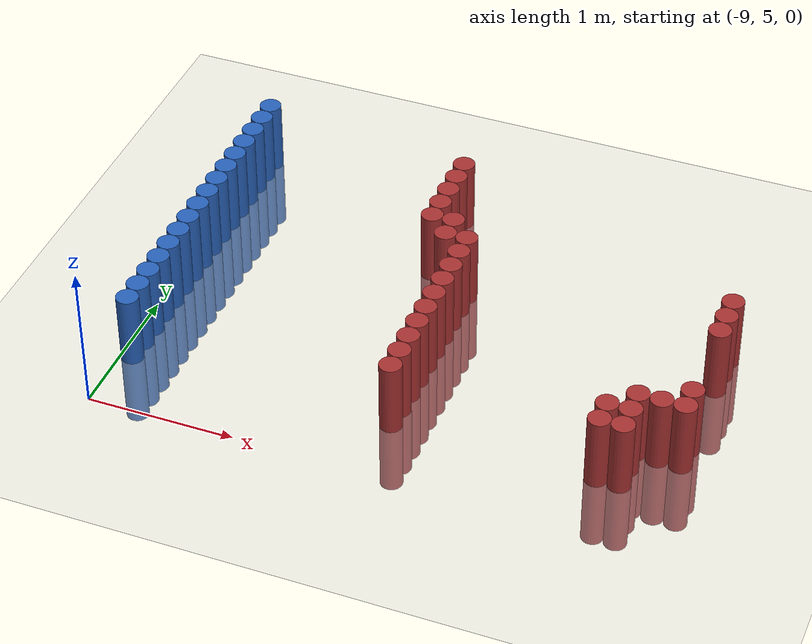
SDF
<sdf version="1.6">
 <world name="default">
  <model name="ground_plane">
   <static>1</static>
   <link name="link">
    <collision name="collision">
     <geometry><plane><normal>0 0 1</normal><size>100 100</size></plane></geometry>
     <surface><friction><ode><mu>100</mu><mu2>50</mu2></ode></friction></surface>
    </collision>
    <visual name="visual">
     <cast_shadows>0</cast_shadows>
     <geometry><plane><normal>0 0 1</normal><size>100 100</size></plane></geometry>
     <material>
      <script><uri>file://media/materials/scripts/gazebo.material</uri><name>Gazebo/Grey</name></script>
     </material>
    </visual>
   </link>
  </model>
  <model name="unit_cylinder_127">
   <static>1</static>
   <pose>-8.925000 5.475000 0.000000 0.000000 0.000000 0.000000</pose>
   <link name="link">
    <inertial>
     <mass>1</mass>
     <inertia><ixx>0.145833</ixx><ixy>0</ixy><ixz>0</ixz><iyy>0.145833</iyy><iyz>0</iyz><izz>0.125</izz></inertia>
    </inertial>
    <collision name="collision">
     <geometry><cylinder><radius>0.075000</radius><length>1</length></cylinder></geometry>
    </collision>
    <visual name="visual">
     <geometry><cylinder><radius>0.075000</radius><length>1</length></cylinder></geometry>
     <material>
      <ambient>0.152000 0.379000 0.720000 1</ambient>
      <diffuse>0.152000 0.379000 0.720000 1</diffuse>
     </material>
     <material>
      <script><name>Gazebo/Grey</name><uri>file://media/materials/scripts/gazebo.material</uri></script>
     </material>
    </visual>
   </link>
  </model>
  <model name="unit_cylinder_128">
   <static>1</static>
   <pose>-8.925000 5.625000 0.000000 0.000000 0.000000 0.000000</pose>
   <link name="link">
    <inertial>
     <mass>1</mass>
     <inertia><ixx>0.145833</ixx><ixy>0</ixy><ixz>0</ixz><iyy>0.145833</iyy><iyz>0</iyz><izz>0.125</izz></inertia>
    </inertial>
    <collision name="collision">
     <geometry><cylinder><radius>0.075000</radius><length>1</length></cylinder></geometry>
    </collision>
    <visual name="visual">
     <geometry><cylinder><radius>0.075000</radius><length>1</length></cylinder></geometry>
     <material>
      <ambient>0.152000 0.379000 0.720000 1</ambient>
      <diffuse>0.152000 0.379000 0.720000 1</diffuse>
     </material>
     <material>
      <script><name>Gazebo/Grey</name><uri>file://media/materials/scripts/gazebo.material</uri></script>
     </material>
    </visual>
   </link>
  </model>
  <model name="unit_cylinder_129">
   <static>1</static>
   <pose>-8.925000 5.775000 0.000000 0.000000 0.000000 0.000000</pose>
   <link name="link">
    <inertial>
     <mass>1</mass>
     <inertia><ixx>0.145833</ixx><ixy>0</ixy><ixz>0</ixz><iyy>0.145833</iyy><iyz>0</iyz><izz>0.125</izz></inertia>
    </inertial>
    <collision name="collision">
     <geometry><cylinder><radius>0.075000</radius><length>1</length></cylinder></geometry>
    </collision>
    <visual name="visual">
     <geometry><cylinder><radius>0.075000</radius><length>1</length></cylinder></geometry>
     <material>
      <ambient>0.152000 0.379000 0.720000 1</ambient>
      <diffuse>0.152000 0.379000 0.720000 1</diffuse>
     </material>
     <material>
      <script><name>Gazebo/Grey</name><uri>file://media/materials/scripts/gazebo.material</uri></script>
     </material>
    </visual>
   </link>
  </model>
  <model name="unit_cylinder_130">
   <static>1</static>
   <pose>-8.925000 5.925000 0.000000 0.000000 0.000000 0.000000</pose>
   <link name="link">
    <inertial>
     <mass>1</mass>
     <inertia><ixx>0.145833</ixx><ixy>0</ixy><ixz>0</ixz><iyy>0.145833</iyy><iyz>0</iyz><izz>0.125</izz></inertia>
    </inertial>
    <collision name="collision">
     <geometry><cylinder><radius>0.075000</radius><length>1</length></cylinder></geometry>
    </collision>
    <visual name="visual">
     <geometry><cylinder><radius>0.075000</radius><length>1</length></cylinder></geometry>
     <material>
      <ambient>0.152000 0.379000 0.720000 1</ambient>
      <diffuse>0.152000 0.379000 0.720000 1</diffuse>
     </material>
     <material>
      <script><name>Gazebo/Grey</name><uri>file://media/materials/scripts/gazebo.material</uri></script>
     </material>
    </visual>
   </link>
  </model>
  <model name="unit_cylinder_131">
   <static>1</static>
   <pose>-8.925000 6.075000 0.000000 0.000000 0.000000 0.000000</pose>
   <link name="link">
    <inertial>
     <mass>1</mass>
     <inertia><ixx>0.145833</ixx><ixy>0</ixy><ixz>0</ixz><iyy>0.145833</iyy><iyz>0</iyz><izz>0.125</izz></inertia>
    </inertial>
    <collision name="collision">
     <geometry><cylinder><radius>0.075000</radius><length>1</length></cylinder></geometry>
    </collision>
    <visual name="visual">
     <geometry><cylinder><radius>0.075000</radius><length>1</length></cylinder></geometry>
     <material>
      <ambient>0.152000 0.379000 0.720000 1</ambient>
      <diffuse>0.152000 0.379000 0.720000 1</diffuse>
     </material>
     <material>
      <script><name>Gazebo/Grey</name><uri>file://media/materials/scripts/gazebo.material</uri></script>
     </material>
    </visual>
   </link>
  </model>
  <model name="unit_cylinder_132">
   <static>1</static>
   <pose>-8.925000 6.225000 0.000000 0.000000 0.000000 0.000000</pose>
   <link name="link">
    <inertial>
     <mass>1</mass>
     <inertia><ixx>0.145833</ixx><ixy>0</ixy><ixz>0</ixz><iyy>0.145833</iyy><iyz>0</iyz><izz>0.125</izz></inertia>
    </inertial>
    <collision name="collision">
     <geometry><cylinder><radius>0.075000</radius><length>1</length></cylinder></geometry>
    </collision>
    <visual name="visual">
     <geometry><cylinder><radius>0.075000</radius><length>1</length></cylinder></geometry>
     <material>
      <ambient>0.152000 0.379000 0.720000 1</ambient>
      <diffuse>0.152000 0.379000 0.720000 1</diffuse>
     </material>
     <material>
      <script><name>Gazebo/Grey</name><uri>file://media/materials/scripts/gazebo.material</uri></script>
     </material>
    </visual>
   </link>
  </model>
  <model name="unit_cylinder_133">
   <static>1</static>
   <pose>-8.925000 6.375000 0.000000 0.000000 0.000000 0.000000</pose>
   <link name="link">
    <inertial>
     <mass>1</mass>
     <inertia><ixx>0.145833</ixx><ixy>0</ixy><ixz>0</ixz><iyy>0.145833</iyy><iyz>0</iyz><izz>0.125</izz></inertia>
    </inertial>
    <collision name="collision">
     <geometry><cylinder><radius>0.075000</radius><length>1</length></cylinder></geometry>
    </collision>
    <visual name="visual">
     <geometry><cylinder><radius>0.075000</radius><length>1</length></cylinder></geometry>
     <material>
      <ambient>0.152000 0.379000 0.720000 1</ambient>
      <diffuse>0.152000 0.379000 0.720000 1</diffuse>
     </material>
     <material>
      <script><name>Gazebo/Grey</name><uri>file://media/materials/scripts/gazebo.material</uri></script>
     </material>
    </visual>
   </link>
  </model>
  <model name="unit_cylinder_134">
   <static>1</static>
   <pose>-8.925000 6.525000 0.000000 0.000000 0.000000 0.000000</pose>
   <link name="link">
    <inertial>
     <mass>1</mass>
     <inertia><ixx>0.145833</ixx><ixy>0</ixy><ixz>0</ixz><iyy>0.145833</iyy><iyz>0</iyz><izz>0.125</izz></inertia>
    </inertial>
    <collision name="collision">
     <geometry><cylinder><radius>0.075000</radius><length>1</length></cylinder></geometry>
    </collision>
    <visual name="visual">
     <geometry><cylinder><radius>0.075000</radius><length>1</length></cylinder></geometry>
     <material>
      <ambient>0.152000 0.379000 0.720000 1</ambient>
      <diffuse>0.152000 0.379000 0.720000 1</diffuse>
     </material>
     <material>
      <script><name>Gazebo/Grey</name><uri>file://media/materials/scripts/gazebo.material</uri></script>
     </material>
    </visual>
   </link>
  </model>
  <model name="unit_cylinder_135">
   <static>1</static>
   <pose>-8.925000 6.675000 0.000000 0.000000 0.000000 0.000000</pose>
   <link name="link">
    <inertial>
     <mass>1</mass>
     <inertia><ixx>0.145833</ixx><ixy>0</ixy><ixz>0</ixz><iyy>0.145833</iyy><iyz>0</iyz><izz>0.125</izz></inertia>
    </inertial>
    <collision name="collision">
     <geometry><cylinder><radius>0.075000</radius><length>1</length></cylinder></geometry>
    </collision>
    <visual name="visual">
     <geometry><cylinder><radius>0.075000</radius><length>1</length></cylinder></geometry>
     <material>
      <ambient>0.152000 0.379000 0.720000 1</ambient>
      <diffuse>0.152000 0.379000 0.720000 1</diffuse>
     </material>
     <material>
      <script><name>Gazebo/Grey</name><uri>file://media/materials/scripts/gazebo.material</uri></script>
     </material>
    </visual>
   </link>
  </model>
  <model name="unit_cylinder_136">
   <static>1</static>
   <pose>-8.925000 6.825000 0.000000 0.000000 0.000000 0.000000</pose>
   <link name="link">
    <inertial>
     <mass>1</mass>
     <inertia><ixx>0.145833</ixx><ixy>0</ixy><ixz>0</ixz><iyy>0.145833</iyy><iyz>0</iyz><izz>0.125</izz></inertia>
    </inertial>
    <collision name="collision">
     <geometry><cylinder><radius>0.075000</radius><length>1</length></cylinder></geometry>
    </collision>
    <visual name="visual">
     <geometry><cylinder><radius>0.075000</radius><length>1</length></cylinder></geometry>
     <material>
      <ambient>0.152000 0.379000 0.720000 1</ambient>
      <diffuse>0.152000 0.379000 0.720000 1</diffuse>
     </material>
     <material>
      <script><name>Gazebo/Grey</name><uri>file://media/materials/scripts/gazebo.material</uri></script>
     </material>
    </visual>
   </link>
  </model>
  <model name="unit_cylinder_137">
   <static>1</static>
   <pose>-8.925000 6.975000 0.000000 0.000000 0.000000 0.000000</pose>
   <link name="link">
    <inertial>
     <mass>1</mass>
     <inertia><ixx>0.145833</ixx><ixy>0</ixy><ixz>0</ixz><iyy>0.145833</iyy><iyz>0</iyz><izz>0.125</izz></inertia>
    </inertial>
    <collision name="collision">
     <geometry><cylinder><radius>0.075000</radius><length>1</length></cylinder></geometry>
    </collision>
    <visual name="visual">
     <geometry><cylinder><radius>0.075000</radius><length>1</length></cylinder></geometry>
     <material>
      <ambient>0.152000 0.379000 0.720000 1</ambient>
      <diffuse>0.152000 0.379000 0.720000 1</diffuse>
     </material>
     <material>
      <script><name>Gazebo/Grey</name><uri>file://media/materials/scripts/gazebo.material</uri></script>
     </material>
    </visual>
   </link>
  </model>
  <model name="unit_cylinder_138">
   <static>1</static>
   <pose>-8.925000 7.125000 0.000000 0.000000 0.000000 0.000000</pose>
   <link name="link">
    <inertial>
     <mass>1</mass>
     <inertia><ixx>0.145833</ixx><ixy>0</ixy><ixz>0</ixz><iyy>0.145833</iyy><iyz>0</iyz><izz>0.125</izz></inertia>
    </inertial>
    <collision name="collision">
     <geometry><cylinder><radius>0.075000</radius><length>1</length></cylinder></geometry>
    </collision>
    <visual name="visual">
     <geometry><cylinder><radius>0.075000</radius><length>1</length></cylinder></geometry>
     <material>
      <ambient>0.152000 0.379000 0.720000 1</ambient>
      <diffuse>0.152000 0.379000 0.720000 1</diffuse>
     </material>
     <material>
      <script><name>Gazebo/Grey</name><uri>file://media/materials/scripts/gazebo.material</uri></script>
     </material>
    </visual>
   </link>
  </model>
  <model name="unit_cylinder_139">
   <static>1</static>
   <pose>-8.925000 7.275000 0.000000 0.000000 0.000000 0.000000</pose>
   <link name="link">
    <inertial>
     <mass>1</mass>
     <inertia><ixx>0.145833</ixx><ixy>0</ixy><ixz>0</ixz><iyy>0.145833</iyy><iyz>0</iyz><izz>0.125</izz></inertia>
    </inertial>
    <collision name="collision">
     <geometry><cylinder><radius>0.075000</radius><length>1</length></cylinder></geometry>
    </collision>
    <visual name="visual">
     <geometry><cylinder><radius>0.075000</radius><length>1</length></cylinder></geometry>
     <material>
      <ambient>0.152000 0.379000 0.720000 1</ambient>
      <diffuse>0.152000 0.379000 0.720000 1</diffuse>
     </material>
     <material>
      <script><name>Gazebo/Grey</name><uri>file://media/materials/scripts/gazebo.material</uri></script>
     </material>
    </visual>
   </link>
  </model>
  <model name="unit_cylinder_140">
   <static>1</static>
   <pose>-8.925000 7.425000 0.000000 0.000000 0.000000 0.000000</pose>
   <link name="link">
    <inertial>
     <mass>1</mass>
     <inertia><ixx>0.145833</ixx><ixy>0</ixy><ixz>0</ixz><iyy>0.145833</iyy><iyz>0</iyz><izz>0.125</izz></inertia>
    </inertial>
    <collision name="collision">
     <geometry><cylinder><radius>0.075000</radius><length>1</length></cylinder></geometry>
    </collision>
    <visual name="visual">
     <geometry><cylinder><radius>0.075000</radius><length>1</length></cylinder></geometry>
     <material>
      <ambient>0.152000 0.379000 0.720000 1</ambient>
      <diffuse>0.152000 0.379000 0.720000 1</diffuse>
     </material>
     <material>
      <script><name>Gazebo/Grey</name><uri>file://media/materials/scripts/gazebo.material</uri></script>
     </material>
    </visual>
   </link>
  </model>
  <model name="unit_cylinder_141">
   <static>1</static>
   <pose>-8.925000 7.575000 0.000000 0.000000 0.000000 0.000000</pose>
   <link name="link">
    <inertial>
     <mass>1</mass>
     <inertia><ixx>0.145833</ixx><ixy>0</ixy><ixz>0</ixz><iyy>0.145833</iyy><iyz>0</iyz><izz>0.125</izz></inertia>
    </inertial>
    <collision name="collision">
     <geometry><cylinder><radius>0.075000</radius><length>1</length></cylinder></geometry>
    </collision>
    <visual name="visual">
     <geometry><cylinder><radius>0.075000</radius><length>1</length></cylinder></geometry>
     <material>
      <ambient>0.152000 0.379000 0.720000 1</ambient>
      <diffuse>0.152000 0.379000 0.720000 1</diffuse>
     </material>
     <material>
      <script><name>Gazebo/Grey</name><uri>file://media/materials/scripts/gazebo.material</uri></script>
     </material>
    </visual>
   </link>
  </model>
  <model name="unit_cylinder_142">
   <static>1</static>
   <pose>-8.925000 7.725000 0.000000 0.000000 0.000000 0.000000</pose>
   <link name="link">
    <inertial>
     <mass>1</mass>
     <inertia><ixx>0.145833</ixx><ixy>0</ixy><ixz>0</ixz><iyy>0.145833</iyy><iyz>0</iyz><izz>0.125</izz></inertia>
    </inertial>
    <collision name="collision">
     <geometry><cylinder><radius>0.075000</radius><length>1</length></cylinder></geometry>
    </collision>
    <visual name="visual">
     <geometry><cylinder><radius>0.075000</radius><length>1</length></cylinder></geometry>
     <material>
      <ambient>0.152000 0.379000 0.720000 1</ambient>
      <diffuse>0.152000 0.379000 0.720000 1</diffuse>
     </material>
     <material>
      <script><name>Gazebo/Grey</name><uri>file://media/materials/scripts/gazebo.material</uri></script>
     </material>
    </visual>
   </link>
  </model>
  <model name="unit_cylinder_174">
   <static>1</static>
   <pose>-7.425000 6.975000 0.000000 0.000000 0.000000 0.000000</pose>
   <link name="link">
    <inertial>
     <mass>1</mass>
     <inertia><ixx>0.145833</ixx><ixy>0</ixy><ixz>0</ixz><iyy>0.145833</iyy><iyz>0</iyz><izz>0.125</izz></inertia>
    </inertial>
    <collision name="collision">
     <geometry><cylinder><radius>0.075000</radius><length>1</length></cylinder></geometry>
    </collision>
    <visual name="visual">
     <geometry><cylinder><radius>0.075000</radius><length>1</length></cylinder></geometry>
     <material>
      <ambient>0.648000 0.192000 0.192000 1</ambient>
      <diffuse>0.648000 0.192000 0.192000 1</diffuse>
     </material>
     <material>
      <script><name>Gazebo/Grey</name><uri>file://media/materials/scripts/gazebo.material</uri></script>
     </material>
    </visual>
   </link>
  </model>
  <model name="unit_cylinder_175">
   <static>1</static>
   <pose>-7.425000 7.125000 0.000000 0.000000 0.000000 0.000000</pose>
   <link name="link">
    <inertial>
     <mass>1</mass>
     <inertia><ixx>0.145833</ixx><ixy>0</ixy><ixz>0</ixz><iyy>0.145833</iyy><iyz>0</iyz><izz>0.125</izz></inertia>
    </inertial>
    <collision name="collision">
     <geometry><cylinder><radius>0.075000</radius><length>1</length></cylinder></geometry>
    </collision>
    <visual name="visual">
     <geometry><cylinder><radius>0.075000</radius><length>1</length></cylinder></geometry>
     <material>
      <ambient>0.648000 0.192000 0.192000 1</ambient>
      <diffuse>0.648000 0.192000 0.192000 1</diffuse>
     </material>
     <material>
      <script><name>Gazebo/Grey</name><uri>file://media/materials/scripts/gazebo.material</uri></script>
     </material>
    </visual>
   </link>
  </model>
  <model name="unit_cylinder_176">
   <static>1</static>
   <pose>-7.425000 7.275000 0.000000 0.000000 0.000000 0.000000</pose>
   <link name="link">
    <inertial>
     <mass>1</mass>
     <inertia><ixx>0.145833</ixx><ixy>0</ixy><ixz>0</ixz><iyy>0.145833</iyy><iyz>0</iyz><izz>0.125</izz></inertia>
    </inertial>
    <collision name="collision">
     <geometry><cylinder><radius>0.075000</radius><length>1</length></cylinder></geometry>
    </collision>
    <visual name="visual">
     <geometry><cylinder><radius>0.075000</radius><length>1</length></cylinder></geometry>
     <material>
      <ambient>0.648000 0.192000 0.192000 1</ambient>
      <diffuse>0.648000 0.192000 0.192000 1</diffuse>
     </material>
     <material>
      <script><name>Gazebo/Grey</name><uri>file://media/materials/scripts/gazebo.material</uri></script>
     </material>
    </visual>
   </link>
  </model>
  <model name="unit_cylinder_177">
   <static>1</static>
   <pose>-7.425000 7.425000 0.000000 0.000000 0.000000 0.000000</pose>
   <link name="link">
    <inertial>
     <mass>1</mass>
     <inertia><ixx>0.145833</ixx><ixy>0</ixy><ixz>0</ixz><iyy>0.145833</iyy><iyz>0</iyz><izz>0.125</izz></inertia>
    </inertial>
    <collision name="collision">
     <geometry><cylinder><radius>0.075000</radius><length>1</length></cylinder></geometry>
    </collision>
    <visual name="visual">
     <geometry><cylinder><radius>0.075000</radius><length>1</length></cylinder></geometry>
     <material>
      <ambient>0.648000 0.192000 0.192000 1</ambient>
      <diffuse>0.648000 0.192000 0.192000 1</diffuse>
     </material>
     <material>
      <script><name>Gazebo/Grey</name><uri>file://media/materials/scripts/gazebo.material</uri></script>
     </material>
    </visual>
   </link>
  </model>
  <model name="unit_cylinder_178">
   <static>1</static>
   <pose>-7.425000 7.575000 0.000000 0.000000 0.000000 0.000000</pose>
   <link name="link">
    <inertial>
     <mass>1</mass>
     <inertia><ixx>0.145833</ixx><ixy>0</ixy><ixz>0</ixz><iyy>0.145833</iyy><iyz>0</iyz><izz>0.125</izz></inertia>
    </inertial>
    <collision name="collision">
     <geometry><cylinder><radius>0.075000</radius><length>1</length></cylinder></geometry>
    </collision>
    <visual name="visual">
     <geometry><cylinder><radius>0.075000</radius><length>1</length></cylinder></geometry>
     <material>
      <ambient>0.648000 0.192000 0.192000 1</ambient>
      <diffuse>0.648000 0.192000 0.192000 1</diffuse>
     </material>
     <material>
      <script><name>Gazebo/Grey</name><uri>file://media/materials/scripts/gazebo.material</uri></script>
     </material>
    </visual>
   </link>
  </model>
  <model name="unit_cylinder_193">
   <static>1</static>
   <pose>-7.275000 6.825000 0.000000 0.000000 0.000000 0.000000</pose>
   <link name="link">
    <inertial>
     <mass>1</mass>
     <inertia><ixx>0.145833</ixx><ixy>0</ixy><ixz>0</ixz><iyy>0.145833</iyy><iyz>0</iyz><izz>0.125</izz></inertia>
    </inertial>
    <collision name="collision">
     <geometry><cylinder><radius>0.075000</radius><length>1</length></cylinder></geometry>
    </collision>
    <visual name="visual">
     <geometry><cylinder><radius>0.075000</radius><length>1</length></cylinder></geometry>
     <material>
      <ambient>0.648000 0.192000 0.192000 1</ambient>
      <diffuse>0.648000 0.192000 0.192000 1</diffuse>
     </material>
     <material>
      <script><name>Gazebo/Grey</name><uri>file://media/materials/scripts/gazebo.material</uri></script>
     </material>
    </visual>
   </link>
  </model>
  <model name="unit_cylinder_194">
   <static>1</static>
   <pose>-7.275000 6.975000 0.000000 0.000000 0.000000 0.000000</pose>
   <link name="link">
    <inertial>
     <mass>1</mass>
     <inertia><ixx>0.145833</ixx><ixy>0</ixy><ixz>0</ixz><iyy>0.145833</iyy><iyz>0</iyz><izz>0.125</izz></inertia>
    </inertial>
    <collision name="collision">
     <geometry><cylinder><radius>0.075000</radius><length>1</length></cylinder></geometry>
    </collision>
    <visual name="visual">
     <geometry><cylinder><radius>0.075000</radius><length>1</length></cylinder></geometry>
     <material>
      <ambient>0.648000 0.192000 0.192000 1</ambient>
      <diffuse>0.648000 0.192000 0.192000 1</diffuse>
     </material>
     <material>
      <script><name>Gazebo/Grey</name><uri>file://media/materials/scripts/gazebo.material</uri></script>
     </material>
    </visual>
   </link>
  </model>
  <model name="unit_cylinder_197">
   <static>1</static>
   <pose>-7.125000 5.475000 0.000000 0.000000 0.000000 0.000000</pose>
   <link name="link">
    <inertial>
     <mass>1</mass>
     <inertia><ixx>0.145833</ixx><ixy>0</ixy><ixz>0</ixz><iyy>0.145833</iyy><iyz>0</iyz><izz>0.125</izz></inertia>
    </inertial>
    <collision name="collision">
     <geometry><cylinder><radius>0.075000</radius><length>1</length></cylinder></geometry>
    </collision>
    <visual name="visual">
     <geometry><cylinder><radius>0.075000</radius><length>1</length></cylinder></geometry>
     <material>
      <ambient>0.648000 0.192000 0.192000 1</ambient>
      <diffuse>0.648000 0.192000 0.192000 1</diffuse>
     </material>
     <material>
      <script><name>Gazebo/Grey</name><uri>file://media/materials/scripts/gazebo.material</uri></script>
     </material>
    </visual>
   </link>
  </model>
  <model name="unit_cylinder_198">
   <static>1</static>
   <pose>-7.125000 5.625000 0.000000 0.000000 0.000000 0.000000</pose>
   <link name="link">
    <inertial>
     <mass>1</mass>
     <inertia><ixx>0.145833</ixx><ixy>0</ixy><ixz>0</ixz><iyy>0.145833</iyy><iyz>0</iyz><izz>0.125</izz></inertia>
    </inertial>
    <collision name="collision">
     <geometry><cylinder><radius>0.075000</radius><length>1</length></cylinder></geometry>
    </collision>
    <visual name="visual">
     <geometry><cylinder><radius>0.075000</radius><length>1</length></cylinder></geometry>
     <material>
      <ambient>0.648000 0.192000 0.192000 1</ambient>
      <diffuse>0.648000 0.192000 0.192000 1</diffuse>
     </material>
     <material>
      <script><name>Gazebo/Grey</name><uri>file://media/materials/scripts/gazebo.material</uri></script>
     </material>
    </visual>
   </link>
  </model>
  <model name="unit_cylinder_199">
   <static>1</static>
   <pose>-7.125000 5.775000 0.000000 0.000000 0.000000 0.000000</pose>
   <link name="link">
    <inertial>
     <mass>1</mass>
     <inertia><ixx>0.145833</ixx><ixy>0</ixy><ixz>0</ixz><iyy>0.145833</iyy><iyz>0</iyz><izz>0.125</izz></inertia>
    </inertial>
    <collision name="collision">
     <geometry><cylinder><radius>0.075000</radius><length>1</length></cylinder></geometry>
    </collision>
    <visual name="visual">
     <geometry><cylinder><radius>0.075000</radius><length>1</length></cylinder></geometry>
     <material>
      <ambient>0.648000 0.192000 0.192000 1</ambient>
      <diffuse>0.648000 0.192000 0.192000 1</diffuse>
     </material>
     <material>
      <script><name>Gazebo/Grey</name><uri>file://media/materials/scripts/gazebo.material</uri></script>
     </material>
    </visual>
   </link>
  </model>
  <model name="unit_cylinder_200">
   <static>1</static>
   <pose>-7.125000 5.925000 0.000000 0.000000 0.000000 0.000000</pose>
   <link name="link">
    <inertial>
     <mass>1</mass>
     <inertia><ixx>0.145833</ixx><ixy>0</ixy><ixz>0</ixz><iyy>0.145833</iyy><iyz>0</iyz><izz>0.125</izz></inertia>
    </inertial>
    <collision name="collision">
     <geometry><cylinder><radius>0.075000</radius><length>1</length></cylinder></geometry>
    </collision>
    <visual name="visual">
     <geometry><cylinder><radius>0.075000</radius><length>1</length></cylinder></geometry>
     <material>
      <ambient>0.648000 0.192000 0.192000 1</ambient>
      <diffuse>0.648000 0.192000 0.192000 1</diffuse>
     </material>
     <material>
      <script><name>Gazebo/Grey</name><uri>file://media/materials/scripts/gazebo.material</uri></script>
     </material>
    </visual>
   </link>
  </model>
  <model name="unit_cylinder_201">
   <static>1</static>
   <pose>-7.125000 6.075000 0.000000 0.000000 0.000000 0.000000</pose>
   <link name="link">
    <inertial>
     <mass>1</mass>
     <inertia><ixx>0.145833</ixx><ixy>0</ixy><ixz>0</ixz><iyy>0.145833</iyy><iyz>0</iyz><izz>0.125</izz></inertia>
    </inertial>
    <collision name="collision">
     <geometry><cylinder><radius>0.075000</radius><length>1</length></cylinder></geometry>
    </collision>
    <visual name="visual">
     <geometry><cylinder><radius>0.075000</radius><length>1</length></cylinder></geometry>
     <material>
      <ambient>0.648000 0.192000 0.192000 1</ambient>
      <diffuse>0.648000 0.192000 0.192000 1</diffuse>
     </material>
     <material>
      <script><name>Gazebo/Grey</name><uri>file://media/materials/scripts/gazebo.material</uri></script>
     </material>
    </visual>
   </link>
  </model>
  <model name="unit_cylinder_202">
   <static>1</static>
   <pose>-7.125000 6.225000 0.000000 0.000000 0.000000 0.000000</pose>
   <link name="link">
    <inertial>
     <mass>1</mass>
     <inertia><ixx>0.145833</ixx><ixy>0</ixy><ixz>0</ixz><iyy>0.145833</iyy><iyz>0</iyz><izz>0.125</izz></inertia>
    </inertial>
    <collision name="collision">
     <geometry><cylinder><radius>0.075000</radius><length>1</length></cylinder></geometry>
    </collision>
    <visual name="visual">
     <geometry><cylinder><radius>0.075000</radius><length>1</length></cylinder></geometry>
     <material>
      <ambient>0.648000 0.192000 0.192000 1</ambient>
      <diffuse>0.648000 0.192000 0.192000 1</diffuse>
     </material>
     <material>
      <script><name>Gazebo/Grey</name><uri>file://media/materials/scripts/gazebo.material</uri></script>
     </material>
    </visual>
   </link>
  </model>
  <model name="unit_cylinder_203">
   <static>1</static>
   <pose>-7.125000 6.375000 0.000000 0.000000 0.000000 0.000000</pose>
   <link name="link">
    <inertial>
     <mass>1</mass>
     <inertia><ixx>0.145833</ixx><ixy>0</ixy><ixz>0</ixz><iyy>0.145833</iyy><iyz>0</iyz><izz>0.125</izz></inertia>
    </inertial>
    <collision name="collision">
     <geometry><cylinder><radius>0.075000</radius><length>1</length></cylinder></geometry>
    </collision>
    <visual name="visual">
     <geometry><cylinder><radius>0.075000</radius><length>1</length></cylinder></geometry>
     <material>
      <ambient>0.648000 0.192000 0.192000 1</ambient>
      <diffuse>0.648000 0.192000 0.192000 1</diffuse>
     </material>
     <material>
      <script><name>Gazebo/Grey</name><uri>file://media/materials/scripts/gazebo.material</uri></script>
     </material>
    </visual>
   </link>
  </model>
  <model name="unit_cylinder_204">
   <static>1</static>
   <pose>-7.125000 6.525000 0.000000 0.000000 0.000000 0.000000</pose>
   <link name="link">
    <inertial>
     <mass>1</mass>
     <inertia><ixx>0.145833</ixx><ixy>0</ixy><ixz>0</ixz><iyy>0.145833</iyy><iyz>0</iyz><izz>0.125</izz></inertia>
    </inertial>
    <collision name="collision">
     <geometry><cylinder><radius>0.075000</radius><length>1</length></cylinder></geometry>
    </collision>
    <visual name="visual">
     <geometry><cylinder><radius>0.075000</radius><length>1</length></cylinder></geometry>
     <material>
      <ambient>0.648000 0.192000 0.192000 1</ambient>
      <diffuse>0.648000 0.192000 0.192000 1</diffuse>
     </material>
     <material>
      <script><name>Gazebo/Grey</name><uri>file://media/materials/scripts/gazebo.material</uri></script>
     </material>
    </visual>
   </link>
  </model>
  <model name="unit_cylinder_205">
   <static>1</static>
   <pose>-7.125000 6.675000 0.000000 0.000000 0.000000 0.000000</pose>
   <link name="link">
    <inertial>
     <mass>1</mass>
     <inertia><ixx>0.145833</ixx><ixy>0</ixy><ixz>0</ixz><iyy>0.145833</iyy><iyz>0</iyz><izz>0.125</izz></inertia>
    </inertial>
    <collision name="collision">
     <geometry><cylinder><radius>0.075000</radius><length>1</length></cylinder></geometry>
    </collision>
    <visual name="visual">
     <geometry><cylinder><radius>0.075000</radius><length>1</length></cylinder></geometry>
     <material>
      <ambient>0.648000 0.192000 0.192000 1</ambient>
      <diffuse>0.648000 0.192000 0.192000 1</diffuse>
     </material>
     <material>
      <script><name>Gazebo/Grey</name><uri>file://media/materials/scripts/gazebo.material</uri></script>
     </material>
    </visual>
   </link>
  </model>
  <model name="unit_cylinder_206">
   <static>1</static>
   <pose>-7.125000 6.825000 0.000000 0.000000 0.000000 0.000000</pose>
   <link name="link">
    <inertial>
     <mass>1</mass>
     <inertia><ixx>0.145833</ixx><ixy>0</ixy><ixz>0</ixz><iyy>0.145833</iyy><iyz>0</iyz><izz>0.125</izz></inertia>
    </inertial>
    <collision name="collision">
     <geometry><cylinder><radius>0.075000</radius><length>1</length></cylinder></geometry>
    </collision>
    <visual name="visual">
     <geometry><cylinder><radius>0.075000</radius><length>1</length></cylinder></geometry>
     <material>
      <ambient>0.648000 0.192000 0.192000 1</ambient>
      <diffuse>0.648000 0.192000 0.192000 1</diffuse>
     </material>
     <material>
      <script><name>Gazebo/Grey</name><uri>file://media/materials/scripts/gazebo.material</uri></script>
     </material>
    </visual>
   </link>
  </model>
  <model name="unit_cylinder_211">
   <static>1</static>
   <pose>-5.775000 5.475000 0.000000 0.000000 0.000000 0.000000</pose>
   <link name="link">
    <inertial>
     <mass>1</mass>
     <inertia><ixx>0.145833</ixx><ixy>0</ixy><ixz>0</ixz><iyy>0.145833</iyy><iyz>0</iyz><izz>0.125</izz></inertia>
    </inertial>
    <collision name="collision">
     <geometry><cylinder><radius>0.075000</radius><length>1</length></cylinder></geometry>
    </collision>
    <visual name="visual">
     <geometry><cylinder><radius>0.075000</radius><length>1</length></cylinder></geometry>
     <material>
      <ambient>0.648000 0.192000 0.192000 1</ambient>
      <diffuse>0.648000 0.192000 0.192000 1</diffuse>
     </material>
     <material>
      <script><name>Gazebo/Grey</name><uri>file://media/materials/scripts/gazebo.material</uri></script>
     </material>
    </visual>
   </link>
  </model>
  <model name="unit_cylinder_212">
   <static>1</static>
   <pose>-5.775000 5.625000 0.000000 0.000000 0.000000 0.000000</pose>
   <link name="link">
    <inertial>
     <mass>1</mass>
     <inertia><ixx>0.145833</ixx><ixy>0</ixy><ixz>0</ixz><iyy>0.145833</iyy><iyz>0</iyz><izz>0.125</izz></inertia>
    </inertial>
    <collision name="collision">
     <geometry><cylinder><radius>0.075000</radius><length>1</length></cylinder></geometry>
    </collision>
    <visual name="visual">
     <geometry><cylinder><radius>0.075000</radius><length>1</length></cylinder></geometry>
     <material>
      <ambient>0.648000 0.192000 0.192000 1</ambient>
      <diffuse>0.648000 0.192000 0.192000 1</diffuse>
     </material>
     <material>
      <script><name>Gazebo/Grey</name><uri>file://media/materials/scripts/gazebo.material</uri></script>
     </material>
    </visual>
   </link>
  </model>
  <model name="unit_cylinder_214">
   <static>1</static>
   <pose>-5.625000 5.475000 0.000000 0.000000 0.000000 0.000000</pose>
   <link name="link">
    <inertial>
     <mass>1</mass>
     <inertia><ixx>0.145833</ixx><ixy>0</ixy><ixz>0</ixz><iyy>0.145833</iyy><iyz>0</iyz><izz>0.125</izz></inertia>
    </inertial>
    <collision name="collision">
     <geometry><cylinder><radius>0.075000</radius><length>1</length></cylinder></geometry>
    </collision>
    <visual name="visual">
     <geometry><cylinder><radius>0.075000</radius><length>1</length></cylinder></geometry>
     <material>
      <ambient>0.648000 0.192000 0.192000 1</ambient>
      <diffuse>0.648000 0.192000 0.192000 1</diffuse>
     </material>
     <material>
      <script><name>Gazebo/Grey</name><uri>file://media/materials/scripts/gazebo.material</uri></script>
     </material>
    </visual>
   </link>
  </model>
  <model name="unit_cylinder_215">
   <static>1</static>
   <pose>-5.625000 5.625000 0.000000 0.000000 0.000000 0.000000</pose>
   <link name="link">
    <inertial>
     <mass>1</mass>
     <inertia><ixx>0.145833</ixx><ixy>0</ixy><ixz>0</ixz><iyy>0.145833</iyy><iyz>0</iyz><izz>0.125</izz></inertia>
    </inertial>
    <collision name="collision">
     <geometry><cylinder><radius>0.075000</radius><length>1</length></cylinder></geometry>
    </collision>
    <visual name="visual">
     <geometry><cylinder><radius>0.075000</radius><length>1</length></cylinder></geometry>
     <material>
      <ambient>0.648000 0.192000 0.192000 1</ambient>
      <diffuse>0.648000 0.192000 0.192000 1</diffuse>
     </material>
     <material>
      <script><name>Gazebo/Grey</name><uri>file://media/materials/scripts/gazebo.material</uri></script>
     </material>
    </visual>
   </link>
  </model>
  <model name="unit_cylinder_216">
   <static>1</static>
   <pose>-5.625000 5.775000 0.000000 0.000000 0.000000 0.000000</pose>
   <link name="link">
    <inertial>
     <mass>1</mass>
     <inertia><ixx>0.145833</ixx><ixy>0</ixy><ixz>0</ixz><iyy>0.145833</iyy><iyz>0</iyz><izz>0.125</izz></inertia>
    </inertial>
    <collision name="collision">
     <geometry><cylinder><radius>0.075000</radius><length>1</length></cylinder></geometry>
    </collision>
    <visual name="visual">
     <geometry><cylinder><radius>0.075000</radius><length>1</length></cylinder></geometry>
     <material>
      <ambient>0.648000 0.192000 0.192000 1</ambient>
      <diffuse>0.648000 0.192000 0.192000 1</diffuse>
     </material>
     <material>
      <script><name>Gazebo/Grey</name><uri>file://media/materials/scripts/gazebo.material</uri></script>
     </material>
    </visual>
   </link>
  </model>
  <model name="unit_cylinder_219">
   <static>1</static>
   <pose>-5.475000 5.775000 0.000000 0.000000 0.000000 0.000000</pose>
   <link name="link">
    <inertial>
     <mass>1</mass>
     <inertia><ixx>0.145833</ixx><ixy>0</ixy><ixz>0</ixz><iyy>0.145833</iyy><iyz>0</iyz><izz>0.125</izz></inertia>
    </inertial>
    <collision name="collision">
     <geometry><cylinder><radius>0.075000</radius><length>1</length></cylinder></geometry>
    </collision>
    <visual name="visual">
     <geometry><cylinder><radius>0.075000</radius><length>1</length></cylinder></geometry>
     <material>
      <ambient>0.648000 0.192000 0.192000 1</ambient>
      <diffuse>0.648000 0.192000 0.192000 1</diffuse>
     </material>
     <material>
      <script><name>Gazebo/Grey</name><uri>file://media/materials/scripts/gazebo.material</uri></script>
     </material>
    </visual>
   </link>
  </model>
  <model name="unit_cylinder_223">
   <static>1</static>
   <pose>-5.325000 5.775000 0.000000 0.000000 0.000000 0.000000</pose>
   <link name="link">
    <inertial>
     <mass>1</mass>
     <inertia><ixx>0.145833</ixx><ixy>0</ixy><ixz>0</ixz><iyy>0.145833</iyy><iyz>0</iyz><izz>0.125</izz></inertia>
    </inertial>
    <collision name="collision">
     <geometry><cylinder><radius>0.075000</radius><length>1</length></cylinder></geometry>
    </collision>
    <visual name="visual">
     <geometry><cylinder><radius>0.075000</radius><length>1</length></cylinder></geometry>
     <material>
      <ambient>0.648000 0.192000 0.192000 1</ambient>
      <diffuse>0.648000 0.192000 0.192000 1</diffuse>
     </material>
     <material>
      <script><name>Gazebo/Grey</name><uri>file://media/materials/scripts/gazebo.material</uri></script>
     </material>
    </visual>
   </link>
  </model>
  <model name="unit_cylinder_224">
   <static>1</static>
   <pose>-5.325000 5.925000 0.000000 0.000000 0.000000 0.000000</pose>
   <link name="link">
    <inertial>
     <mass>1</mass>
     <inertia><ixx>0.145833</ixx><ixy>0</ixy><ixz>0</ixz><iyy>0.145833</iyy><iyz>0</iyz><izz>0.125</izz></inertia>
    </inertial>
    <collision name="collision">
     <geometry><cylinder><radius>0.075000</radius><length>1</length></cylinder></geometry>
    </collision>
    <visual name="visual">
     <geometry><cylinder><radius>0.075000</radius><length>1</length></cylinder></geometry>
     <material>
      <ambient>0.648000 0.192000 0.192000 1</ambient>
      <diffuse>0.648000 0.192000 0.192000 1</diffuse>
     </material>
     <material>
      <script><name>Gazebo/Grey</name><uri>file://media/materials/scripts/gazebo.material</uri></script>
     </material>
    </visual>
   </link>
  </model>
  <model name="unit_cylinder_225">
   <static>1</static>
   <pose>-5.325000 6.525000 0.000000 0.000000 0.000000 0.000000</pose>
   <link name="link">
    <inertial>
     <mass>1</mass>
     <inertia><ixx>0.145833</ixx><ixy>0</ixy><ixz>0</ixz><iyy>0.145833</iyy><iyz>0</iyz><izz>0.125</izz></inertia>
    </inertial>
    <collision name="collision">
     <geometry><cylinder><radius>0.075000</radius><length>1</length></cylinder></geometry>
    </collision>
    <visual name="visual">
     <geometry><cylinder><radius>0.075000</radius><length>1</length></cylinder></geometry>
     <material>
      <ambient>0.648000 0.192000 0.192000 1</ambient>
      <diffuse>0.648000 0.192000 0.192000 1</diffuse>
     </material>
     <material>
      <script><name>Gazebo/Grey</name><uri>file://media/materials/scripts/gazebo.material</uri></script>
     </material>
    </visual>
   </link>
  </model>
  <model name="unit_cylinder_226">
   <static>1</static>
   <pose>-5.325000 6.675000 0.000000 0.000000 0.000000 0.000000</pose>
   <link name="link">
    <inertial>
     <mass>1</mass>
     <inertia><ixx>0.145833</ixx><ixy>0</ixy><ixz>0</ixz><iyy>0.145833</iyy><iyz>0</iyz><izz>0.125</izz></inertia>
    </inertial>
    <collision name="collision">
     <geometry><cylinder><radius>0.075000</radius><length>1</length></cylinder></geometry>
    </collision>
    <visual name="visual">
     <geometry><cylinder><radius>0.075000</radius><length>1</length></cylinder></geometry>
     <material>
      <ambient>0.648000 0.192000 0.192000 1</ambient>
      <diffuse>0.648000 0.192000 0.192000 1</diffuse>
     </material>
     <material>
      <script><name>Gazebo/Grey</name><uri>file://media/materials/scripts/gazebo.material</uri></script>
     </material>
    </visual>
   </link>
  </model>
  <model name="unit_cylinder_227">
   <static>1</static>
   <pose>-5.325000 6.825000 0.000000 0.000000 0.000000 0.000000</pose>
   <link name="link">
    <inertial>
     <mass>1</mass>
     <inertia><ixx>0.145833</ixx><ixy>0</ixy><ixz>0</ixz><iyy>0.145833</iyy><iyz>0</iyz><izz>0.125</izz></inertia>
    </inertial>
    <collision name="collision">
     <geometry><cylinder><radius>0.075000</radius><length>1</length></cylinder></geometry>
    </collision>
    <visual name="visual">
     <geometry><cylinder><radius>0.075000</radius><length>1</length></cylinder></geometry>
     <material>
      <ambient>0.648000 0.192000 0.192000 1</ambient>
      <diffuse>0.648000 0.192000 0.192000 1</diffuse>
     </material>
     <material>
      <script><name>Gazebo/Grey</name><uri>file://media/materials/scripts/gazebo.material</uri></script>
     </material>
    </visual>
   </link>
  </model>
 </world>
</sdf>
